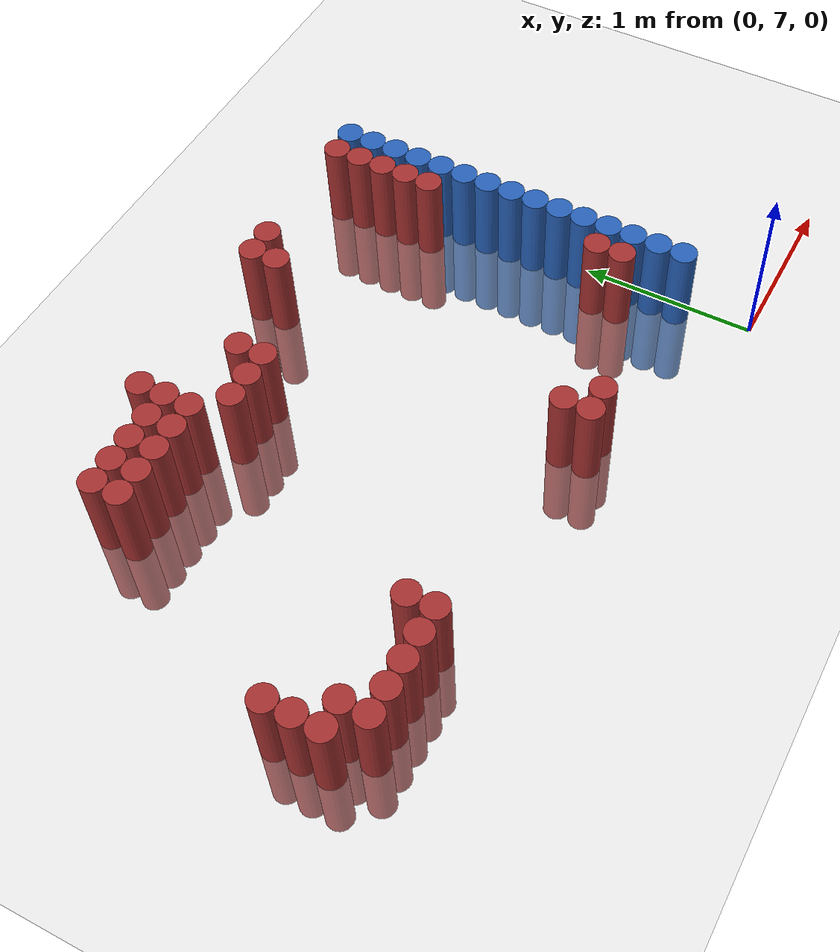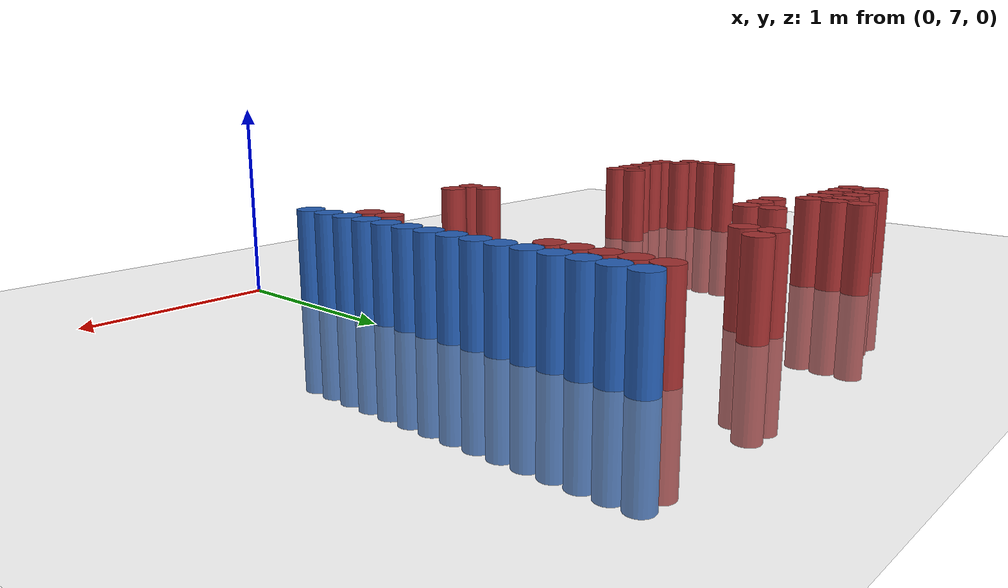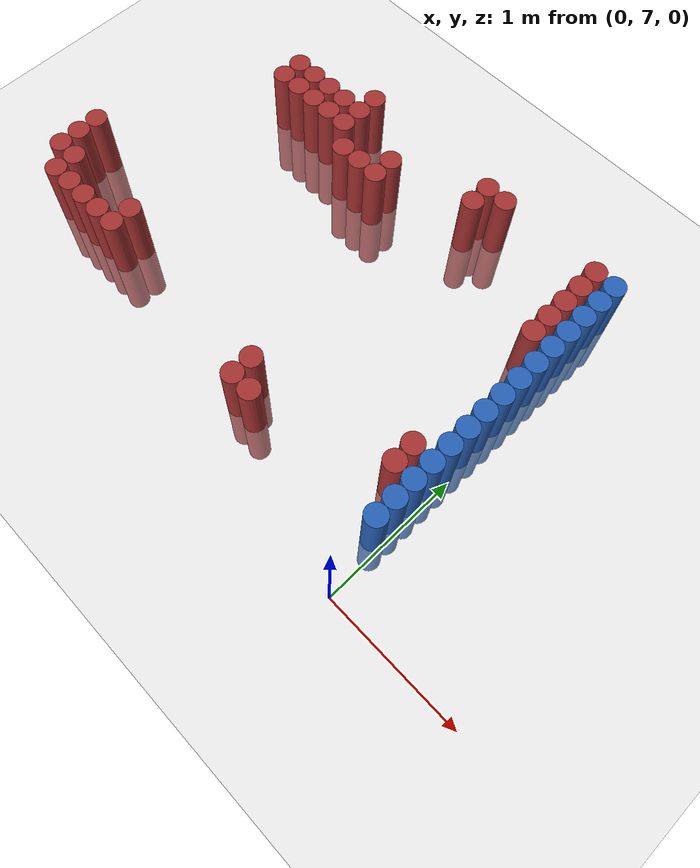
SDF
<sdf version="1.6">
 <world name="default">
  <model name="ground_plane">
   <static>1</static>
   <link name="link">
    <collision name="collision">
     <geometry><plane><normal>0 0 1</normal><size>100 100</size></plane></geometry>
     <surface><friction><ode><mu>100</mu><mu2>50</mu2></ode></friction></surface>
    </collision>
    <visual name="visual">
     <cast_shadows>0</cast_shadows>
     <geometry><plane><normal>0 0 1</normal><size>100 100</size></plane></geometry>
     <material>
      <script><uri>file://media/materials/scripts/gazebo.material</uri><name>Gazebo/Grey</name></script>
     </material>
    </visual>
   </link>
  </model>
  <model name="unit_cylinder_157">
   <static>1</static>
   <pose>-3.375000 7.725000 0.000000 0.000000 0.000000 0.000000</pose>
   <link name="link">
    <inertial>
     <mass>1</mass>
     <inertia><ixx>0.145833</ixx><ixy>0</ixy><ixz>0</ixz><iyy>0.145833</iyy><iyz>0</iyz><izz>0.125</izz></inertia>
    </inertial>
    <collision name="collision">
     <geometry><cylinder><radius>0.075000</radius><length>1</length></cylinder></geometry>
    </collision>
    <visual name="visual">
     <geometry><cylinder><radius>0.075000</radius><length>1</length></cylinder></geometry>
     <material>
      <ambient>0.648000 0.192000 0.192000 1</ambient>
      <diffuse>0.648000 0.192000 0.192000 1</diffuse>
     </material>
     <material>
      <script><name>Gazebo/Grey</name><uri>file://media/materials/scripts/gazebo.material</uri></script>
     </material>
    </visual>
   </link>
  </model>
  <model name="unit_cylinder_158">
   <static>1</static>
   <pose>-3.375000 7.875000 0.000000 0.000000 0.000000 0.000000</pose>
   <link name="link">
    <inertial>
     <mass>1</mass>
     <inertia><ixx>0.145833</ixx><ixy>0</ixy><ixz>0</ixz><iyy>0.145833</iyy><iyz>0</iyz><izz>0.125</izz></inertia>
    </inertial>
    <collision name="collision">
     <geometry><cylinder><radius>0.075000</radius><length>1</length></cylinder></geometry>
    </collision>
    <visual name="visual">
     <geometry><cylinder><radius>0.075000</radius><length>1</length></cylinder></geometry>
     <material>
      <ambient>0.648000 0.192000 0.192000 1</ambient>
      <diffuse>0.648000 0.192000 0.192000 1</diffuse>
     </material>
     <material>
      <script><name>Gazebo/Grey</name><uri>file://media/materials/scripts/gazebo.material</uri></script>
     </material>
    </visual>
   </link>
  </model>
  <model name="unit_cylinder_159">
   <static>1</static>
   <pose>-3.375000 8.025000 0.000000 0.000000 0.000000 0.000000</pose>
   <link name="link">
    <inertial>
     <mass>1</mass>
     <inertia><ixx>0.145833</ixx><ixy>0</ixy><ixz>0</ixz><iyy>0.145833</iyy><iyz>0</iyz><izz>0.125</izz></inertia>
    </inertial>
    <collision name="collision">
     <geometry><cylinder><radius>0.075000</radius><length>1</length></cylinder></geometry>
    </collision>
    <visual name="visual">
     <geometry><cylinder><radius>0.075000</radius><length>1</length></cylinder></geometry>
     <material>
      <ambient>0.648000 0.192000 0.192000 1</ambient>
      <diffuse>0.648000 0.192000 0.192000 1</diffuse>
     </material>
     <material>
      <script><name>Gazebo/Grey</name><uri>file://media/materials/scripts/gazebo.material</uri></script>
     </material>
    </visual>
   </link>
  </model>
  <model name="unit_cylinder_163">
   <static>1</static>
   <pose>-3.225000 7.575000 0.000000 0.000000 0.000000 0.000000</pose>
   <link name="link">
    <inertial>
     <mass>1</mass>
     <inertia><ixx>0.145833</ixx><ixy>0</ixy><ixz>0</ixz><iyy>0.145833</iyy><iyz>0</iyz><izz>0.125</izz></inertia>
    </inertial>
    <collision name="collision">
     <geometry><cylinder><radius>0.075000</radius><length>1</length></cylinder></geometry>
    </collision>
    <visual name="visual">
     <geometry><cylinder><radius>0.075000</radius><length>1</length></cylinder></geometry>
     <material>
      <ambient>0.648000 0.192000 0.192000 1</ambient>
      <diffuse>0.648000 0.192000 0.192000 1</diffuse>
     </material>
     <material>
      <script><name>Gazebo/Grey</name><uri>file://media/materials/scripts/gazebo.material</uri></script>
     </material>
    </visual>
   </link>
  </model>
  <model name="unit_cylinder_164">
   <static>1</static>
   <pose>-3.225000 7.725000 0.000000 0.000000 0.000000 0.000000</pose>
   <link name="link">
    <inertial>
     <mass>1</mass>
     <inertia><ixx>0.145833</ixx><ixy>0</ixy><ixz>0</ixz><iyy>0.145833</iyy><iyz>0</iyz><izz>0.125</izz></inertia>
    </inertial>
    <collision name="collision">
     <geometry><cylinder><radius>0.075000</radius><length>1</length></cylinder></geometry>
    </collision>
    <visual name="visual">
     <geometry><cylinder><radius>0.075000</radius><length>1</length></cylinder></geometry>
     <material>
      <ambient>0.648000 0.192000 0.192000 1</ambient>
      <diffuse>0.648000 0.192000 0.192000 1</diffuse>
     </material>
     <material>
      <script><name>Gazebo/Grey</name><uri>file://media/materials/scripts/gazebo.material</uri></script>
     </material>
    </visual>
   </link>
  </model>
  <model name="unit_cylinder_167">
   <static>1</static>
   <pose>-3.075000 7.575000 0.000000 0.000000 0.000000 0.000000</pose>
   <link name="link">
    <inertial>
     <mass>1</mass>
     <inertia><ixx>0.145833</ixx><ixy>0</ixy><ixz>0</ixz><iyy>0.145833</iyy><iyz>0</iyz><izz>0.125</izz></inertia>
    </inertial>
    <collision name="collision">
     <geometry><cylinder><radius>0.075000</radius><length>1</length></cylinder></geometry>
    </collision>
    <visual name="visual">
     <geometry><cylinder><radius>0.075000</radius><length>1</length></cylinder></geometry>
     <material>
      <ambient>0.648000 0.192000 0.192000 1</ambient>
      <diffuse>0.648000 0.192000 0.192000 1</diffuse>
     </material>
     <material>
      <script><name>Gazebo/Grey</name><uri>file://media/materials/scripts/gazebo.material</uri></script>
     </material>
    </visual>
   </link>
  </model>
  <model name="unit_cylinder_169">
   <static>1</static>
   <pose>-2.925000 7.575000 0.000000 0.000000 0.000000 0.000000</pose>
   <link name="link">
    <inertial>
     <mass>1</mass>
     <inertia><ixx>0.145833</ixx><ixy>0</ixy><ixz>0</ixz><iyy>0.145833</iyy><iyz>0</iyz><izz>0.125</izz></inertia>
    </inertial>
    <collision name="collision">
     <geometry><cylinder><radius>0.075000</radius><length>1</length></cylinder></geometry>
    </collision>
    <visual name="visual">
     <geometry><cylinder><radius>0.075000</radius><length>1</length></cylinder></geometry>
     <material>
      <ambient>0.648000 0.192000 0.192000 1</ambient>
      <diffuse>0.648000 0.192000 0.192000 1</diffuse>
     </material>
     <material>
      <script><name>Gazebo/Grey</name><uri>file://media/materials/scripts/gazebo.material</uri></script>
     </material>
    </visual>
   </link>
  </model>
  <model name="unit_cylinder_171">
   <static>1</static>
   <pose>-2.775000 7.575000 0.000000 0.000000 0.000000 0.000000</pose>
   <link name="link">
    <inertial>
     <mass>1</mass>
     <inertia><ixx>0.145833</ixx><ixy>0</ixy><ixz>0</ixz><iyy>0.145833</iyy><iyz>0</iyz><izz>0.125</izz></inertia>
    </inertial>
    <collision name="collision">
     <geometry><cylinder><radius>0.075000</radius><length>1</length></cylinder></geometry>
    </collision>
    <visual name="visual">
     <geometry><cylinder><radius>0.075000</radius><length>1</length></cylinder></geometry>
     <material>
      <ambient>0.648000 0.192000 0.192000 1</ambient>
      <diffuse>0.648000 0.192000 0.192000 1</diffuse>
     </material>
     <material>
      <script><name>Gazebo/Grey</name><uri>file://media/materials/scripts/gazebo.material</uri></script>
     </material>
    </visual>
   </link>
  </model>
  <model name="unit_cylinder_172">
   <static>1</static>
   <pose>-2.775000 9.225000 0.000000 0.000000 0.000000 0.000000</pose>
   <link name="link">
    <inertial>
     <mass>1</mass>
     <inertia><ixx>0.145833</ixx><ixy>0</ixy><ixz>0</ixz><iyy>0.145833</iyy><iyz>0</iyz><izz>0.125</izz></inertia>
    </inertial>
    <collision name="collision">
     <geometry><cylinder><radius>0.075000</radius><length>1</length></cylinder></geometry>
    </collision>
    <visual name="visual">
     <geometry><cylinder><radius>0.075000</radius><length>1</length></cylinder></geometry>
     <material>
      <ambient>0.648000 0.192000 0.192000 1</ambient>
      <diffuse>0.648000 0.192000 0.192000 1</diffuse>
     </material>
     <material>
      <script><name>Gazebo/Grey</name><uri>file://media/materials/scripts/gazebo.material</uri></script>
     </material>
    </visual>
   </link>
  </model>
  <model name="unit_cylinder_173">
   <static>1</static>
   <pose>-2.775000 9.375000 0.000000 0.000000 0.000000 0.000000</pose>
   <link name="link">
    <inertial>
     <mass>1</mass>
     <inertia><ixx>0.145833</ixx><ixy>0</ixy><ixz>0</ixz><iyy>0.145833</iyy><iyz>0</iyz><izz>0.125</izz></inertia>
    </inertial>
    <collision name="collision">
     <geometry><cylinder><radius>0.075000</radius><length>1</length></cylinder></geometry>
    </collision>
    <visual name="visual">
     <geometry><cylinder><radius>0.075000</radius><length>1</length></cylinder></geometry>
     <material>
      <ambient>0.648000 0.192000 0.192000 1</ambient>
      <diffuse>0.648000 0.192000 0.192000 1</diffuse>
     </material>
     <material>
      <script><name>Gazebo/Grey</name><uri>file://media/materials/scripts/gazebo.material</uri></script>
     </material>
    </visual>
   </link>
  </model>
  <model name="unit_cylinder_174">
   <static>1</static>
   <pose>-2.625000 7.575000 0.000000 0.000000 0.000000 0.000000</pose>
   <link name="link">
    <inertial>
     <mass>1</mass>
     <inertia><ixx>0.145833</ixx><ixy>0</ixy><ixz>0</ixz><iyy>0.145833</iyy><iyz>0</iyz><izz>0.125</izz></inertia>
    </inertial>
    <collision name="collision">
     <geometry><cylinder><radius>0.075000</radius><length>1</length></cylinder></geometry>
    </collision>
    <visual name="visual">
     <geometry><cylinder><radius>0.075000</radius><length>1</length></cylinder></geometry>
     <material>
      <ambient>0.648000 0.192000 0.192000 1</ambient>
      <diffuse>0.648000 0.192000 0.192000 1</diffuse>
     </material>
     <material>
      <script><name>Gazebo/Grey</name><uri>file://media/materials/scripts/gazebo.material</uri></script>
     </material>
    </visual>
   </link>
  </model>
  <model name="unit_cylinder_175">
   <static>1</static>
   <pose>-2.625000 7.725000 0.000000 0.000000 0.000000 0.000000</pose>
   <link name="link">
    <inertial>
     <mass>1</mass>
     <inertia><ixx>0.145833</ixx><ixy>0</ixy><ixz>0</ixz><iyy>0.145833</iyy><iyz>0</iyz><izz>0.125</izz></inertia>
    </inertial>
    <collision name="collision">
     <geometry><cylinder><radius>0.075000</radius><length>1</length></cylinder></geometry>
    </collision>
    <visual name="visual">
     <geometry><cylinder><radius>0.075000</radius><length>1</length></cylinder></geometry>
     <material>
      <ambient>0.648000 0.192000 0.192000 1</ambient>
      <diffuse>0.648000 0.192000 0.192000 1</diffuse>
     </material>
     <material>
      <script><name>Gazebo/Grey</name><uri>file://media/materials/scripts/gazebo.material</uri></script>
     </material>
    </visual>
   </link>
  </model>
  <model name="unit_cylinder_176">
   <static>1</static>
   <pose>-2.625000 9.225000 0.000000 0.000000 0.000000 0.000000</pose>
   <link name="link">
    <inertial>
     <mass>1</mass>
     <inertia><ixx>0.145833</ixx><ixy>0</ixy><ixz>0</ixz><iyy>0.145833</iyy><iyz>0</iyz><izz>0.125</izz></inertia>
    </inertial>
    <collision name="collision">
     <geometry><cylinder><radius>0.075000</radius><length>1</length></cylinder></geometry>
    </collision>
    <visual name="visual">
     <geometry><cylinder><radius>0.075000</radius><length>1</length></cylinder></geometry>
     <material>
      <ambient>0.648000 0.192000 0.192000 1</ambient>
      <diffuse>0.648000 0.192000 0.192000 1</diffuse>
     </material>
     <material>
      <script><name>Gazebo/Grey</name><uri>file://media/materials/scripts/gazebo.material</uri></script>
     </material>
    </visual>
   </link>
  </model>
  <model name="unit_cylinder_177">
   <static>1</static>
   <pose>-2.625000 9.375000 0.000000 0.000000 0.000000 0.000000</pose>
   <link name="link">
    <inertial>
     <mass>1</mass>
     <inertia><ixx>0.145833</ixx><ixy>0</ixy><ixz>0</ixz><iyy>0.145833</iyy><iyz>0</iyz><izz>0.125</izz></inertia>
    </inertial>
    <collision name="collision">
     <geometry><cylinder><radius>0.075000</radius><length>1</length></cylinder></geometry>
    </collision>
    <visual name="visual">
     <geometry><cylinder><radius>0.075000</radius><length>1</length></cylinder></geometry>
     <material>
      <ambient>0.648000 0.192000 0.192000 1</ambient>
      <diffuse>0.648000 0.192000 0.192000 1</diffuse>
     </material>
     <material>
      <script><name>Gazebo/Grey</name><uri>file://media/materials/scripts/gazebo.material</uri></script>
     </material>
    </visual>
   </link>
  </model>
  <model name="unit_cylinder_178">
   <static>1</static>
   <pose>-2.475000 9.225000 0.000000 0.000000 0.000000 0.000000</pose>
   <link name="link">
    <inertial>
     <mass>1</mass>
     <inertia><ixx>0.145833</ixx><ixy>0</ixy><ixz>0</ixz><iyy>0.145833</iyy><iyz>0</iyz><izz>0.125</izz></inertia>
    </inertial>
    <collision name="collision">
     <geometry><cylinder><radius>0.075000</radius><length>1</length></cylinder></geometry>
    </collision>
    <visual name="visual">
     <geometry><cylinder><radius>0.075000</radius><length>1</length></cylinder></geometry>
     <material>
      <ambient>0.648000 0.192000 0.192000 1</ambient>
      <diffuse>0.648000 0.192000 0.192000 1</diffuse>
     </material>
     <material>
      <script><name>Gazebo/Grey</name><uri>file://media/materials/scripts/gazebo.material</uri></script>
     </material>
    </visual>
   </link>
  </model>
  <model name="unit_cylinder_179">
   <static>1</static>
   <pose>-2.475000 9.375000 0.000000 0.000000 0.000000 0.000000</pose>
   <link name="link">
    <inertial>
     <mass>1</mass>
     <inertia><ixx>0.145833</ixx><ixy>0</ixy><ixz>0</ixz><iyy>0.145833</iyy><iyz>0</iyz><izz>0.125</izz></inertia>
    </inertial>
    <collision name="collision">
     <geometry><cylinder><radius>0.075000</radius><length>1</length></cylinder></geometry>
    </collision>
    <visual name="visual">
     <geometry><cylinder><radius>0.075000</radius><length>1</length></cylinder></geometry>
     <material>
      <ambient>0.648000 0.192000 0.192000 1</ambient>
      <diffuse>0.648000 0.192000 0.192000 1</diffuse>
     </material>
     <material>
      <script><name>Gazebo/Grey</name><uri>file://media/materials/scripts/gazebo.material</uri></script>
     </material>
    </visual>
   </link>
  </model>
  <model name="unit_cylinder_180">
   <static>1</static>
   <pose>-2.325000 9.225000 0.000000 0.000000 0.000000 0.000000</pose>
   <link name="link">
    <inertial>
     <mass>1</mass>
     <inertia><ixx>0.145833</ixx><ixy>0</ixy><ixz>0</ixz><iyy>0.145833</iyy><iyz>0</iyz><izz>0.125</izz></inertia>
    </inertial>
    <collision name="collision">
     <geometry><cylinder><radius>0.075000</radius><length>1</length></cylinder></geometry>
    </collision>
    <visual name="visual">
     <geometry><cylinder><radius>0.075000</radius><length>1</length></cylinder></geometry>
     <material>
      <ambient>0.648000 0.192000 0.192000 1</ambient>
      <diffuse>0.648000 0.192000 0.192000 1</diffuse>
     </material>
     <material>
      <script><name>Gazebo/Grey</name><uri>file://media/materials/scripts/gazebo.material</uri></script>
     </material>
    </visual>
   </link>
  </model>
  <model name="unit_cylinder_181">
   <static>1</static>
   <pose>-2.325000 9.375000 0.000000 0.000000 0.000000 0.000000</pose>
   <link name="link">
    <inertial>
     <mass>1</mass>
     <inertia><ixx>0.145833</ixx><ixy>0</ixy><ixz>0</ixz><iyy>0.145833</iyy><iyz>0</iyz><izz>0.125</izz></inertia>
    </inertial>
    <collision name="collision">
     <geometry><cylinder><radius>0.075000</radius><length>1</length></cylinder></geometry>
    </collision>
    <visual name="visual">
     <geometry><cylinder><radius>0.075000</radius><length>1</length></cylinder></geometry>
     <material>
      <ambient>0.648000 0.192000 0.192000 1</ambient>
      <diffuse>0.648000 0.192000 0.192000 1</diffuse>
     </material>
     <material>
      <script><name>Gazebo/Grey</name><uri>file://media/materials/scripts/gazebo.material</uri></script>
     </material>
    </visual>
   </link>
  </model>
  <model name="unit_cylinder_182">
   <static>1</static>
   <pose>-2.175000 9.225000 0.000000 0.000000 0.000000 0.000000</pose>
   <link name="link">
    <inertial>
     <mass>1</mass>
     <inertia><ixx>0.145833</ixx><ixy>0</ixy><ixz>0</ixz><iyy>0.145833</iyy><iyz>0</iyz><izz>0.125</izz></inertia>
    </inertial>
    <collision name="collision">
     <geometry><cylinder><radius>0.075000</radius><length>1</length></cylinder></geometry>
    </collision>
    <visual name="visual">
     <geometry><cylinder><radius>0.075000</radius><length>1</length></cylinder></geometry>
     <material>
      <ambient>0.648000 0.192000 0.192000 1</ambient>
      <diffuse>0.648000 0.192000 0.192000 1</diffuse>
     </material>
     <material>
      <script><name>Gazebo/Grey</name><uri>file://media/materials/scripts/gazebo.material</uri></script>
     </material>
    </visual>
   </link>
  </model>
  <model name="unit_cylinder_183">
   <static>1</static>
   <pose>-2.175000 9.375000 0.000000 0.000000 0.000000 0.000000</pose>
   <link name="link">
    <inertial>
     <mass>1</mass>
     <inertia><ixx>0.145833</ixx><ixy>0</ixy><ixz>0</ixz><iyy>0.145833</iyy><iyz>0</iyz><izz>0.125</izz></inertia>
    </inertial>
    <collision name="collision">
     <geometry><cylinder><radius>0.075000</radius><length>1</length></cylinder></geometry>
    </collision>
    <visual name="visual">
     <geometry><cylinder><radius>0.075000</radius><length>1</length></cylinder></geometry>
     <material>
      <ambient>0.648000 0.192000 0.192000 1</ambient>
      <diffuse>0.648000 0.192000 0.192000 1</diffuse>
     </material>
     <material>
      <script><name>Gazebo/Grey</name><uri>file://media/materials/scripts/gazebo.material</uri></script>
     </material>
    </visual>
   </link>
  </model>
  <model name="unit_cylinder_184">
   <static>1</static>
   <pose>-2.175000 9.525000 0.000000 0.000000 0.000000 0.000000</pose>
   <link name="link">
    <inertial>
     <mass>1</mass>
     <inertia><ixx>0.145833</ixx><ixy>0</ixy><ixz>0</ixz><iyy>0.145833</iyy><iyz>0</iyz><izz>0.125</izz></inertia>
    </inertial>
    <collision name="collision">
     <geometry><cylinder><radius>0.075000</radius><length>1</length></cylinder></geometry>
    </collision>
    <visual name="visual">
     <geometry><cylinder><radius>0.075000</radius><length>1</length></cylinder></geometry>
     <material>
      <ambient>0.648000 0.192000 0.192000 1</ambient>
      <diffuse>0.648000 0.192000 0.192000 1</diffuse>
     </material>
     <material>
      <script><name>Gazebo/Grey</name><uri>file://media/materials/scripts/gazebo.material</uri></script>
     </material>
    </visual>
   </link>
  </model>
  <model name="unit_cylinder_185">
   <static>1</static>
   <pose>-2.025000 9.075000 0.000000 0.000000 0.000000 0.000000</pose>
   <link name="link">
    <inertial>
     <mass>1</mass>
     <inertia><ixx>0.145833</ixx><ixy>0</ixy><ixz>0</ixz><iyy>0.145833</iyy><iyz>0</iyz><izz>0.125</izz></inertia>
    </inertial>
    <collision name="collision">
     <geometry><cylinder><radius>0.075000</radius><length>1</length></cylinder></geometry>
    </collision>
    <visual name="visual">
     <geometry><cylinder><radius>0.075000</radius><length>1</length></cylinder></geometry>
     <material>
      <ambient>0.648000 0.192000 0.192000 1</ambient>
      <diffuse>0.648000 0.192000 0.192000 1</diffuse>
     </material>
     <material>
      <script><name>Gazebo/Grey</name><uri>file://media/materials/scripts/gazebo.material</uri></script>
     </material>
    </visual>
   </link>
  </model>
  <model name="unit_cylinder_186">
   <static>1</static>
   <pose>-1.875000 9.075000 0.000000 0.000000 0.000000 0.000000</pose>
   <link name="link">
    <inertial>
     <mass>1</mass>
     <inertia><ixx>0.145833</ixx><ixy>0</ixy><ixz>0</ixz><iyy>0.145833</iyy><iyz>0</iyz><izz>0.125</izz></inertia>
    </inertial>
    <collision name="collision">
     <geometry><cylinder><radius>0.075000</radius><length>1</length></cylinder></geometry>
    </collision>
    <visual name="visual">
     <geometry><cylinder><radius>0.075000</radius><length>1</length></cylinder></geometry>
     <material>
      <ambient>0.648000 0.192000 0.192000 1</ambient>
      <diffuse>0.648000 0.192000 0.192000 1</diffuse>
     </material>
     <material>
      <script><name>Gazebo/Grey</name><uri>file://media/materials/scripts/gazebo.material</uri></script>
     </material>
    </visual>
   </link>
  </model>
  <model name="unit_cylinder_189">
   <static>1</static>
   <pose>-1.725000 9.075000 0.000000 0.000000 0.000000 0.000000</pose>
   <link name="link">
    <inertial>
     <mass>1</mass>
     <inertia><ixx>0.145833</ixx><ixy>0</ixy><ixz>0</ixz><iyy>0.145833</iyy><iyz>0</iyz><izz>0.125</izz></inertia>
    </inertial>
    <collision name="collision">
     <geometry><cylinder><radius>0.075000</radius><length>1</length></cylinder></geometry>
    </collision>
    <visual name="visual">
     <geometry><cylinder><radius>0.075000</radius><length>1</length></cylinder></geometry>
     <material>
      <ambient>0.648000 0.192000 0.192000 1</ambient>
      <diffuse>0.648000 0.192000 0.192000 1</diffuse>
     </material>
     <material>
      <script><name>Gazebo/Grey</name><uri>file://media/materials/scripts/gazebo.material</uri></script>
     </material>
    </visual>
   </link>
  </model>
  <model name="unit_cylinder_190">
   <static>1</static>
   <pose>-1.725000 9.225000 0.000000 0.000000 0.000000 0.000000</pose>
   <link name="link">
    <inertial>
     <mass>1</mass>
     <inertia><ixx>0.145833</ixx><ixy>0</ixy><ixz>0</ixz><iyy>0.145833</iyy><iyz>0</iyz><izz>0.125</izz></inertia>
    </inertial>
    <collision name="collision">
     <geometry><cylinder><radius>0.075000</radius><length>1</length></cylinder></geometry>
    </collision>
    <visual name="visual">
     <geometry><cylinder><radius>0.075000</radius><length>1</length></cylinder></geometry>
     <material>
      <ambient>0.648000 0.192000 0.192000 1</ambient>
      <diffuse>0.648000 0.192000 0.192000 1</diffuse>
     </material>
     <material>
      <script><name>Gazebo/Grey</name><uri>file://media/materials/scripts/gazebo.material</uri></script>
     </material>
    </visual>
   </link>
  </model>
  <model name="unit_cylinder_206">
   <static>1</static>
   <pose>-1.275000 7.425000 0.000000 0.000000 0.000000 0.000000</pose>
   <link name="link">
    <inertial>
     <mass>1</mass>
     <inertia><ixx>0.145833</ixx><ixy>0</ixy><ixz>0</ixz><iyy>0.145833</iyy><iyz>0</iyz><izz>0.125</izz></inertia>
    </inertial>
    <collision name="collision">
     <geometry><cylinder><radius>0.075000</radius><length>1</length></cylinder></geometry>
    </collision>
    <visual name="visual">
     <geometry><cylinder><radius>0.075000</radius><length>1</length></cylinder></geometry>
     <material>
      <ambient>0.648000 0.192000 0.192000 1</ambient>
      <diffuse>0.648000 0.192000 0.192000 1</diffuse>
     </material>
     <material>
      <script><name>Gazebo/Grey</name><uri>file://media/materials/scripts/gazebo.material</uri></script>
     </material>
    </visual>
   </link>
  </model>
  <model name="unit_cylinder_207">
   <static>1</static>
   <pose>-1.275000 7.575000 0.000000 0.000000 0.000000 0.000000</pose>
   <link name="link">
    <inertial>
     <mass>1</mass>
     <inertia><ixx>0.145833</ixx><ixy>0</ixy><ixz>0</ixz><iyy>0.145833</iyy><iyz>0</iyz><izz>0.125</izz></inertia>
    </inertial>
    <collision name="collision">
     <geometry><cylinder><radius>0.075000</radius><length>1</length></cylinder></geometry>
    </collision>
    <visual name="visual">
     <geometry><cylinder><radius>0.075000</radius><length>1</length></cylinder></geometry>
     <material>
      <ambient>0.648000 0.192000 0.192000 1</ambient>
      <diffuse>0.648000 0.192000 0.192000 1</diffuse>
     </material>
     <material>
      <script><name>Gazebo/Grey</name><uri>file://media/materials/scripts/gazebo.material</uri></script>
     </material>
    </visual>
   </link>
  </model>
  <model name="unit_cylinder_210">
   <static>1</static>
   <pose>-1.125000 7.425000 0.000000 0.000000 0.000000 0.000000</pose>
   <link name="link">
    <inertial>
     <mass>1</mass>
     <inertia><ixx>0.145833</ixx><ixy>0</ixy><ixz>0</ixz><iyy>0.145833</iyy><iyz>0</iyz><izz>0.125</izz></inertia>
    </inertial>
    <collision name="collision">
     <geometry><cylinder><radius>0.075000</radius><length>1</length></cylinder></geometry>
    </collision>
    <visual name="visual">
     <geometry><cylinder><radius>0.075000</radius><length>1</length></cylinder></geometry>
     <material>
      <ambient>0.648000 0.192000 0.192000 1</ambient>
      <diffuse>0.648000 0.192000 0.192000 1</diffuse>
     </material>
     <material>
      <script><name>Gazebo/Grey</name><uri>file://media/materials/scripts/gazebo.material</uri></script>
     </material>
    </visual>
   </link>
  </model>
  <model name="unit_cylinder_211">
   <static>1</static>
   <pose>-1.125000 9.375000 0.000000 0.000000 0.000000 0.000000</pose>
   <link name="link">
    <inertial>
     <mass>1</mass>
     <inertia><ixx>0.145833</ixx><ixy>0</ixy><ixz>0</ixz><iyy>0.145833</iyy><iyz>0</iyz><izz>0.125</izz></inertia>
    </inertial>
    <collision name="collision">
     <geometry><cylinder><radius>0.075000</radius><length>1</length></cylinder></geometry>
    </collision>
    <visual name="visual">
     <geometry><cylinder><radius>0.075000</radius><length>1</length></cylinder></geometry>
     <material>
      <ambient>0.648000 0.192000 0.192000 1</ambient>
      <diffuse>0.648000 0.192000 0.192000 1</diffuse>
     </material>
     <material>
      <script><name>Gazebo/Grey</name><uri>file://media/materials/scripts/gazebo.material</uri></script>
     </material>
    </visual>
   </link>
  </model>
  <model name="unit_cylinder_212">
   <static>1</static>
   <pose>-1.125000 9.525000 0.000000 0.000000 0.000000 0.000000</pose>
   <link name="link">
    <inertial>
     <mass>1</mass>
     <inertia><ixx>0.145833</ixx><ixy>0</ixy><ixz>0</ixz><iyy>0.145833</iyy><iyz>0</iyz><izz>0.125</izz></inertia>
    </inertial>
    <collision name="collision">
     <geometry><cylinder><radius>0.075000</radius><length>1</length></cylinder></geometry>
    </collision>
    <visual name="visual">
     <geometry><cylinder><radius>0.075000</radius><length>1</length></cylinder></geometry>
     <material>
      <ambient>0.648000 0.192000 0.192000 1</ambient>
      <diffuse>0.648000 0.192000 0.192000 1</diffuse>
     </material>
     <material>
      <script><name>Gazebo/Grey</name><uri>file://media/materials/scripts/gazebo.material</uri></script>
     </material>
    </visual>
   </link>
  </model>
  <model name="unit_cylinder_215">
   <static>1</static>
   <pose>-0.975000 9.525000 0.000000 0.000000 0.000000 0.000000</pose>
   <link name="link">
    <inertial>
     <mass>1</mass>
     <inertia><ixx>0.145833</ixx><ixy>0</ixy><ixz>0</ixz><iyy>0.145833</iyy><iyz>0</iyz><izz>0.125</izz></inertia>
    </inertial>
    <collision name="collision">
     <geometry><cylinder><radius>0.075000</radius><length>1</length></cylinder></geometry>
    </collision>
    <visual name="visual">
     <geometry><cylinder><radius>0.075000</radius><length>1</length></cylinder></geometry>
     <material>
      <ambient>0.648000 0.192000 0.192000 1</ambient>
      <diffuse>0.648000 0.192000 0.192000 1</diffuse>
     </material>
     <material>
      <script><name>Gazebo/Grey</name><uri>file://media/materials/scripts/gazebo.material</uri></script>
     </material>
    </visual>
   </link>
  </model>
  <model name="unit_cylinder_226">
   <static>1</static>
   <pose>-0.225000 7.725000 0.000000 0.000000 0.000000 0.000000</pose>
   <link name="link">
    <inertial>
     <mass>1</mass>
     <inertia><ixx>0.145833</ixx><ixy>0</ixy><ixz>0</ixz><iyy>0.145833</iyy><iyz>0</iyz><izz>0.125</izz></inertia>
    </inertial>
    <collision name="collision">
     <geometry><cylinder><radius>0.075000</radius><length>1</length></cylinder></geometry>
    </collision>
    <visual name="visual">
     <geometry><cylinder><radius>0.075000</radius><length>1</length></cylinder></geometry>
     <material>
      <ambient>0.648000 0.192000 0.192000 1</ambient>
      <diffuse>0.648000 0.192000 0.192000 1</diffuse>
     </material>
     <material>
      <script><name>Gazebo/Grey</name><uri>file://media/materials/scripts/gazebo.material</uri></script>
     </material>
    </visual>
   </link>
  </model>
  <model name="unit_cylinder_227">
   <static>1</static>
   <pose>-0.225000 7.875000 0.000000 0.000000 0.000000 0.000000</pose>
   <link name="link">
    <inertial>
     <mass>1</mass>
     <inertia><ixx>0.145833</ixx><ixy>0</ixy><ixz>0</ixz><iyy>0.145833</iyy><iyz>0</iyz><izz>0.125</izz></inertia>
    </inertial>
    <collision name="collision">
     <geometry><cylinder><radius>0.075000</radius><length>1</length></cylinder></geometry>
    </collision>
    <visual name="visual">
     <geometry><cylinder><radius>0.075000</radius><length>1</length></cylinder></geometry>
     <material>
      <ambient>0.648000 0.192000 0.192000 1</ambient>
      <diffuse>0.648000 0.192000 0.192000 1</diffuse>
     </material>
     <material>
      <script><name>Gazebo/Grey</name><uri>file://media/materials/scripts/gazebo.material</uri></script>
     </material>
    </visual>
   </link>
  </model>
  <model name="unit_cylinder_228">
   <static>1</static>
   <pose>-0.225000 8.925000 0.000000 0.000000 0.000000 0.000000</pose>
   <link name="link">
    <inertial>
     <mass>1</mass>
     <inertia><ixx>0.145833</ixx><ixy>0</ixy><ixz>0</ixz><iyy>0.145833</iyy><iyz>0</iyz><izz>0.125</izz></inertia>
    </inertial>
    <collision name="collision">
     <geometry><cylinder><radius>0.075000</radius><length>1</length></cylinder></geometry>
    </collision>
    <visual name="visual">
     <geometry><cylinder><radius>0.075000</radius><length>1</length></cylinder></geometry>
     <material>
      <ambient>0.648000 0.192000 0.192000 1</ambient>
      <diffuse>0.648000 0.192000 0.192000 1</diffuse>
     </material>
     <material>
      <script><name>Gazebo/Grey</name><uri>file://media/materials/scripts/gazebo.material</uri></script>
     </material>
    </visual>
   </link>
  </model>
  <model name="unit_cylinder_229">
   <static>1</static>
   <pose>-0.225000 9.075000 0.000000 0.000000 0.000000 0.000000</pose>
   <link name="link">
    <inertial>
     <mass>1</mass>
     <inertia><ixx>0.145833</ixx><ixy>0</ixy><ixz>0</ixz><iyy>0.145833</iyy><iyz>0</iyz><izz>0.125</izz></inertia>
    </inertial>
    <collision name="collision">
     <geometry><cylinder><radius>0.075000</radius><length>1</length></cylinder></geometry>
    </collision>
    <visual name="visual">
     <geometry><cylinder><radius>0.075000</radius><length>1</length></cylinder></geometry>
     <material>
      <ambient>0.648000 0.192000 0.192000 1</ambient>
      <diffuse>0.648000 0.192000 0.192000 1</diffuse>
     </material>
     <material>
      <script><name>Gazebo/Grey</name><uri>file://media/materials/scripts/gazebo.material</uri></script>
     </material>
    </visual>
   </link>
  </model>
  <model name="unit_cylinder_230">
   <static>1</static>
   <pose>-0.225000 9.225000 0.000000 0.000000 0.000000 0.000000</pose>
   <link name="link">
    <inertial>
     <mass>1</mass>
     <inertia><ixx>0.145833</ixx><ixy>0</ixy><ixz>0</ixz><iyy>0.145833</iyy><iyz>0</iyz><izz>0.125</izz></inertia>
    </inertial>
    <collision name="collision">
     <geometry><cylinder><radius>0.075000</radius><length>1</length></cylinder></geometry>
    </collision>
    <visual name="visual">
     <geometry><cylinder><radius>0.075000</radius><length>1</length></cylinder></geometry>
     <material>
      <ambient>0.648000 0.192000 0.192000 1</ambient>
      <diffuse>0.648000 0.192000 0.192000 1</diffuse>
     </material>
     <material>
      <script><name>Gazebo/Grey</name><uri>file://media/materials/scripts/gazebo.material</uri></script>
     </material>
    </visual>
   </link>
  </model>
  <model name="unit_cylinder_231">
   <static>1</static>
   <pose>-0.225000 9.375000 0.000000 0.000000 0.000000 0.000000</pose>
   <link name="link">
    <inertial>
     <mass>1</mass>
     <inertia><ixx>0.145833</ixx><ixy>0</ixy><ixz>0</ixz><iyy>0.145833</iyy><iyz>0</iyz><izz>0.125</izz></inertia>
    </inertial>
    <collision name="collision">
     <geometry><cylinder><radius>0.075000</radius><length>1</length></cylinder></geometry>
    </collision>
    <visual name="visual">
     <geometry><cylinder><radius>0.075000</radius><length>1</length></cylinder></geometry>
     <material>
      <ambient>0.648000 0.192000 0.192000 1</ambient>
      <diffuse>0.648000 0.192000 0.192000 1</diffuse>
     </material>
     <material>
      <script><name>Gazebo/Grey</name><uri>file://media/materials/scripts/gazebo.material</uri></script>
     </material>
    </visual>
   </link>
  </model>
  <model name="unit_cylinder_232">
   <static>1</static>
   <pose>-0.225000 9.525000 0.000000 0.000000 0.000000 0.000000</pose>
   <link name="link">
    <inertial>
     <mass>1</mass>
     <inertia><ixx>0.145833</ixx><ixy>0</ixy><ixz>0</ixz><iyy>0.145833</iyy><iyz>0</iyz><izz>0.125</izz></inertia>
    </inertial>
    <collision name="collision">
     <geometry><cylinder><radius>0.075000</radius><length>1</length></cylinder></geometry>
    </collision>
    <visual name="visual">
     <geometry><cylinder><radius>0.075000</radius><length>1</length></cylinder></geometry>
     <material>
      <ambient>0.648000 0.192000 0.192000 1</ambient>
      <diffuse>0.648000 0.192000 0.192000 1</diffuse>
     </material>
     <material>
      <script><name>Gazebo/Grey</name><uri>file://media/materials/scripts/gazebo.material</uri></script>
     </material>
    </visual>
   </link>
  </model>
  <model name="unit_cylinder_248">
   <static>1</static>
   <pose>-0.075000 7.425000 0.000000 0.000000 0.000000 0.000000</pose>
   <link name="link">
    <inertial>
     <mass>1</mass>
     <inertia><ixx>0.145833</ixx><ixy>0</ixy><ixz>0</ixz><iyy>0.145833</iyy><iyz>0</iyz><izz>0.125</izz></inertia>
    </inertial>
    <collision name="collision">
     <geometry><cylinder><radius>0.075000</radius><length>1</length></cylinder></geometry>
    </collision>
    <visual name="visual">
     <geometry><cylinder><radius>0.075000</radius><length>1</length></cylinder></geometry>
     <material>
      <ambient>0.152000 0.379000 0.720000 1</ambient>
      <diffuse>0.152000 0.379000 0.720000 1</diffuse>
     </material>
     <material>
      <script><name>Gazebo/Grey</name><uri>file://media/materials/scripts/gazebo.material</uri></script>
     </material>
    </visual>
   </link>
  </model>
  <model name="unit_cylinder_249">
   <static>1</static>
   <pose>-0.075000 7.575000 0.000000 0.000000 0.000000 0.000000</pose>
   <link name="link">
    <inertial>
     <mass>1</mass>
     <inertia><ixx>0.145833</ixx><ixy>0</ixy><ixz>0</ixz><iyy>0.145833</iyy><iyz>0</iyz><izz>0.125</izz></inertia>
    </inertial>
    <collision name="collision">
     <geometry><cylinder><radius>0.075000</radius><length>1</length></cylinder></geometry>
    </collision>
    <visual name="visual">
     <geometry><cylinder><radius>0.075000</radius><length>1</length></cylinder></geometry>
     <material>
      <ambient>0.152000 0.379000 0.720000 1</ambient>
      <diffuse>0.152000 0.379000 0.720000 1</diffuse>
     </material>
     <material>
      <script><name>Gazebo/Grey</name><uri>file://media/materials/scripts/gazebo.material</uri></script>
     </material>
    </visual>
   </link>
  </model>
  <model name="unit_cylinder_250">
   <static>1</static>
   <pose>-0.075000 7.725000 0.000000 0.000000 0.000000 0.000000</pose>
   <link name="link">
    <inertial>
     <mass>1</mass>
     <inertia><ixx>0.145833</ixx><ixy>0</ixy><ixz>0</ixz><iyy>0.145833</iyy><iyz>0</iyz><izz>0.125</izz></inertia>
    </inertial>
    <collision name="collision">
     <geometry><cylinder><radius>0.075000</radius><length>1</length></cylinder></geometry>
    </collision>
    <visual name="visual">
     <geometry><cylinder><radius>0.075000</radius><length>1</length></cylinder></geometry>
     <material>
      <ambient>0.152000 0.379000 0.720000 1</ambient>
      <diffuse>0.152000 0.379000 0.720000 1</diffuse>
     </material>
     <material>
      <script><name>Gazebo/Grey</name><uri>file://media/materials/scripts/gazebo.material</uri></script>
     </material>
    </visual>
   </link>
  </model>
  <model name="unit_cylinder_251">
   <static>1</static>
   <pose>-0.075000 7.875000 0.000000 0.000000 0.000000 0.000000</pose>
   <link name="link">
    <inertial>
     <mass>1</mass>
     <inertia><ixx>0.145833</ixx><ixy>0</ixy><ixz>0</ixz><iyy>0.145833</iyy><iyz>0</iyz><izz>0.125</izz></inertia>
    </inertial>
    <collision name="collision">
     <geometry><cylinder><radius>0.075000</radius><length>1</length></cylinder></geometry>
    </collision>
    <visual name="visual">
     <geometry><cylinder><radius>0.075000</radius><length>1</length></cylinder></geometry>
     <material>
      <ambient>0.152000 0.379000 0.720000 1</ambient>
      <diffuse>0.152000 0.379000 0.720000 1</diffuse>
     </material>
     <material>
      <script><name>Gazebo/Grey</name><uri>file://media/materials/scripts/gazebo.material</uri></script>
     </material>
    </visual>
   </link>
  </model>
  <model name="unit_cylinder_252">
   <static>1</static>
   <pose>-0.075000 8.025000 0.000000 0.000000 0.000000 0.000000</pose>
   <link name="link">
    <inertial>
     <mass>1</mass>
     <inertia><ixx>0.145833</ixx><ixy>0</ixy><ixz>0</ixz><iyy>0.145833</iyy><iyz>0</iyz><izz>0.125</izz></inertia>
    </inertial>
    <collision name="collision">
     <geometry><cylinder><radius>0.075000</radius><length>1</length></cylinder></geometry>
    </collision>
    <visual name="visual">
     <geometry><cylinder><radius>0.075000</radius><length>1</length></cylinder></geometry>
     <material>
      <ambient>0.152000 0.379000 0.720000 1</ambient>
      <diffuse>0.152000 0.379000 0.720000 1</diffuse>
     </material>
     <material>
      <script><name>Gazebo/Grey</name><uri>file://media/materials/scripts/gazebo.material</uri></script>
     </material>
    </visual>
   </link>
  </model>
  <model name="unit_cylinder_253">
   <static>1</static>
   <pose>-0.075000 8.175000 0.000000 0.000000 0.000000 0.000000</pose>
   <link name="link">
    <inertial>
     <mass>1</mass>
     <inertia><ixx>0.145833</ixx><ixy>0</ixy><ixz>0</ixz><iyy>0.145833</iyy><iyz>0</iyz><izz>0.125</izz></inertia>
    </inertial>
    <collision name="collision">
     <geometry><cylinder><radius>0.075000</radius><length>1</length></cylinder></geometry>
    </collision>
    <visual name="visual">
     <geometry><cylinder><radius>0.075000</radius><length>1</length></cylinder></geometry>
     <material>
      <ambient>0.152000 0.379000 0.720000 1</ambient>
      <diffuse>0.152000 0.379000 0.720000 1</diffuse>
     </material>
     <material>
      <script><name>Gazebo/Grey</name><uri>file://media/materials/scripts/gazebo.material</uri></script>
     </material>
    </visual>
   </link>
  </model>
  <model name="unit_cylinder_254">
   <static>1</static>
   <pose>-0.075000 8.325000 0.000000 0.000000 0.000000 0.000000</pose>
   <link name="link">
    <inertial>
     <mass>1</mass>
     <inertia><ixx>0.145833</ixx><ixy>0</ixy><ixz>0</ixz><iyy>0.145833</iyy><iyz>0</iyz><izz>0.125</izz></inertia>
    </inertial>
    <collision name="collision">
     <geometry><cylinder><radius>0.075000</radius><length>1</length></cylinder></geometry>
    </collision>
    <visual name="visual">
     <geometry><cylinder><radius>0.075000</radius><length>1</length></cylinder></geometry>
     <material>
      <ambient>0.152000 0.379000 0.720000 1</ambient>
      <diffuse>0.152000 0.379000 0.720000 1</diffuse>
     </material>
     <material>
      <script><name>Gazebo/Grey</name><uri>file://media/materials/scripts/gazebo.material</uri></script>
     </material>
    </visual>
   </link>
  </model>
  <model name="unit_cylinder_255">
   <static>1</static>
   <pose>-0.075000 8.475000 0.000000 0.000000 0.000000 0.000000</pose>
   <link name="link">
    <inertial>
     <mass>1</mass>
     <inertia><ixx>0.145833</ixx><ixy>0</ixy><ixz>0</ixz><iyy>0.145833</iyy><iyz>0</iyz><izz>0.125</izz></inertia>
    </inertial>
    <collision name="collision">
     <geometry><cylinder><radius>0.075000</radius><length>1</length></cylinder></geometry>
    </collision>
    <visual name="visual">
     <geometry><cylinder><radius>0.075000</radius><length>1</length></cylinder></geometry>
     <material>
      <ambient>0.152000 0.379000 0.720000 1</ambient>
      <diffuse>0.152000 0.379000 0.720000 1</diffuse>
     </material>
     <material>
      <script><name>Gazebo/Grey</name><uri>file://media/materials/scripts/gazebo.material</uri></script>
     </material>
    </visual>
   </link>
  </model>
  <model name="unit_cylinder_256">
   <static>1</static>
   <pose>-0.075000 8.625000 0.000000 0.000000 0.000000 0.000000</pose>
   <link name="link">
    <inertial>
     <mass>1</mass>
     <inertia><ixx>0.145833</ixx><ixy>0</ixy><ixz>0</ixz><iyy>0.145833</iyy><iyz>0</iyz><izz>0.125</izz></inertia>
    </inertial>
    <collision name="collision">
     <geometry><cylinder><radius>0.075000</radius><length>1</length></cylinder></geometry>
    </collision>
    <visual name="visual">
     <geometry><cylinder><radius>0.075000</radius><length>1</length></cylinder></geometry>
     <material>
      <ambient>0.152000 0.379000 0.720000 1</ambient>
      <diffuse>0.152000 0.379000 0.720000 1</diffuse>
     </material>
     <material>
      <script><name>Gazebo/Grey</name><uri>file://media/materials/scripts/gazebo.material</uri></script>
     </material>
    </visual>
   </link>
  </model>
  <model name="unit_cylinder_257">
   <static>1</static>
   <pose>-0.075000 8.775000 0.000000 0.000000 0.000000 0.000000</pose>
   <link name="link">
    <inertial>
     <mass>1</mass>
     <inertia><ixx>0.145833</ixx><ixy>0</ixy><ixz>0</ixz><iyy>0.145833</iyy><iyz>0</iyz><izz>0.125</izz></inertia>
    </inertial>
    <collision name="collision">
     <geometry><cylinder><radius>0.075000</radius><length>1</length></cylinder></geometry>
    </collision>
    <visual name="visual">
     <geometry><cylinder><radius>0.075000</radius><length>1</length></cylinder></geometry>
     <material>
      <ambient>0.152000 0.379000 0.720000 1</ambient>
      <diffuse>0.152000 0.379000 0.720000 1</diffuse>
     </material>
     <material>
      <script><name>Gazebo/Grey</name><uri>file://media/materials/scripts/gazebo.material</uri></script>
     </material>
    </visual>
   </link>
  </model>
  <model name="unit_cylinder_258">
   <static>1</static>
   <pose>-0.075000 8.925000 0.000000 0.000000 0.000000 0.000000</pose>
   <link name="link">
    <inertial>
     <mass>1</mass>
     <inertia><ixx>0.145833</ixx><ixy>0</ixy><ixz>0</ixz><iyy>0.145833</iyy><iyz>0</iyz><izz>0.125</izz></inertia>
    </inertial>
    <collision name="collision">
     <geometry><cylinder><radius>0.075000</radius><length>1</length></cylinder></geometry>
    </collision>
    <visual name="visual">
     <geometry><cylinder><radius>0.075000</radius><length>1</length></cylinder></geometry>
     <material>
      <ambient>0.152000 0.379000 0.720000 1</ambient>
      <diffuse>0.152000 0.379000 0.720000 1</diffuse>
     </material>
     <material>
      <script><name>Gazebo/Grey</name><uri>file://media/materials/scripts/gazebo.material</uri></script>
     </material>
    </visual>
   </link>
  </model>
  <model name="unit_cylinder_259">
   <static>1</static>
   <pose>-0.075000 9.075000 0.000000 0.000000 0.000000 0.000000</pose>
   <link name="link">
    <inertial>
     <mass>1</mass>
     <inertia><ixx>0.145833</ixx><ixy>0</ixy><ixz>0</ixz><iyy>0.145833</iyy><iyz>0</iyz><izz>0.125</izz></inertia>
    </inertial>
    <collision name="collision">
     <geometry><cylinder><radius>0.075000</radius><length>1</length></cylinder></geometry>
    </collision>
    <visual name="visual">
     <geometry><cylinder><radius>0.075000</radius><length>1</length></cylinder></geometry>
     <material>
      <ambient>0.152000 0.379000 0.720000 1</ambient>
      <diffuse>0.152000 0.379000 0.720000 1</diffuse>
     </material>
     <material>
      <script><name>Gazebo/Grey</name><uri>file://media/materials/scripts/gazebo.material</uri></script>
     </material>
    </visual>
   </link>
  </model>
  <model name="unit_cylinder_260">
   <static>1</static>
   <pose>-0.075000 9.225000 0.000000 0.000000 0.000000 0.000000</pose>
   <link name="link">
    <inertial>
     <mass>1</mass>
     <inertia><ixx>0.145833</ixx><ixy>0</ixy><ixz>0</ixz><iyy>0.145833</iyy><iyz>0</iyz><izz>0.125</izz></inertia>
    </inertial>
    <collision name="collision">
     <geometry><cylinder><radius>0.075000</radius><length>1</length></cylinder></geometry>
    </collision>
    <visual name="visual">
     <geometry><cylinder><radius>0.075000</radius><length>1</length></cylinder></geometry>
     <material>
      <ambient>0.152000 0.379000 0.720000 1</ambient>
      <diffuse>0.152000 0.379000 0.720000 1</diffuse>
     </material>
     <material>
      <script><name>Gazebo/Grey</name><uri>file://media/materials/scripts/gazebo.material</uri></script>
     </material>
    </visual>
   </link>
  </model>
  <model name="unit_cylinder_261">
   <static>1</static>
   <pose>-0.075000 9.375000 0.000000 0.000000 0.000000 0.000000</pose>
   <link name="link">
    <inertial>
     <mass>1</mass>
     <inertia><ixx>0.145833</ixx><ixy>0</ixy><ixz>0</ixz><iyy>0.145833</iyy><iyz>0</iyz><izz>0.125</izz></inertia>
    </inertial>
    <collision name="collision">
     <geometry><cylinder><radius>0.075000</radius><length>1</length></cylinder></geometry>
    </collision>
    <visual name="visual">
     <geometry><cylinder><radius>0.075000</radius><length>1</length></cylinder></geometry>
     <material>
      <ambient>0.152000 0.379000 0.720000 1</ambient>
      <diffuse>0.152000 0.379000 0.720000 1</diffuse>
     </material>
     <material>
      <script><name>Gazebo/Grey</name><uri>file://media/materials/scripts/gazebo.material</uri></script>
     </material>
    </visual>
   </link>
  </model>
  <model name="unit_cylinder_262">
   <static>1</static>
   <pose>-0.075000 9.525000 0.000000 0.000000 0.000000 0.000000</pose>
   <link name="link">
    <inertial>
     <mass>1</mass>
     <inertia><ixx>0.145833</ixx><ixy>0</ixy><ixz>0</ixz><iyy>0.145833</iyy><iyz>0</iyz><izz>0.125</izz></inertia>
    </inertial>
    <collision name="collision">
     <geometry><cylinder><radius>0.075000</radius><length>1</length></cylinder></geometry>
    </collision>
    <visual name="visual">
     <geometry><cylinder><radius>0.075000</radius><length>1</length></cylinder></geometry>
     <material>
      <ambient>0.152000 0.379000 0.720000 1</ambient>
      <diffuse>0.152000 0.379000 0.720000 1</diffuse>
     </material>
     <material>
      <script><name>Gazebo/Grey</name><uri>file://media/materials/scripts/gazebo.material</uri></script>
     </material>
    </visual>
   </link>
  </model>
 </world>
</sdf>
